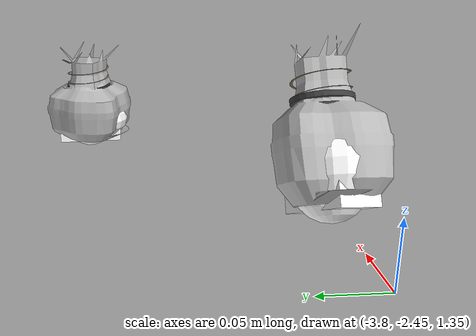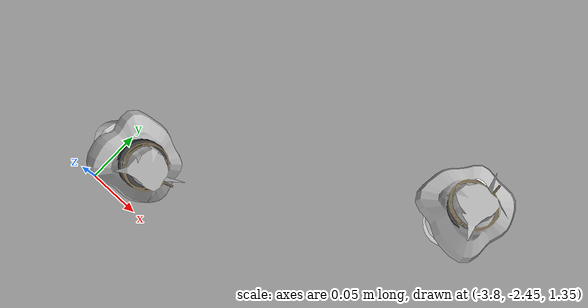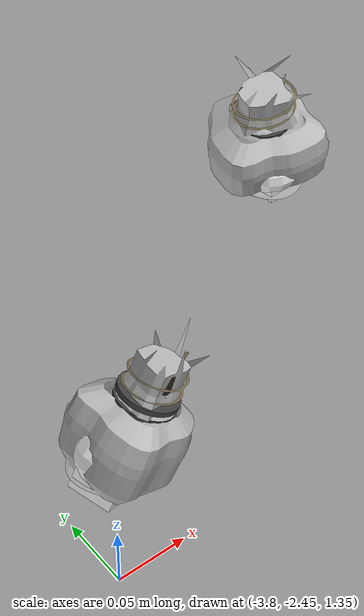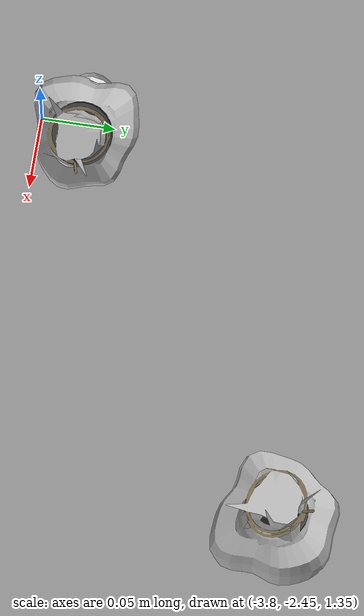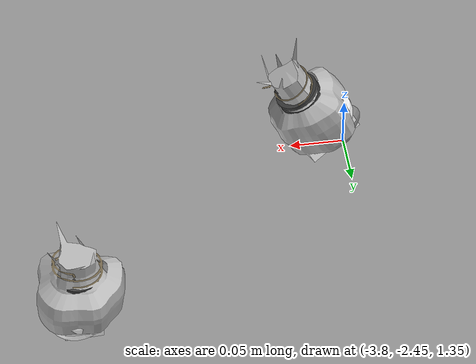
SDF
<sdf version="1.11">
 <world name="peach_orchard">
  <model name="ground">
   <static>true</static>
   <link name="link">
    <visual name="soil">
     <geometry><plane><normal>0 0 1</normal><size>32 22</size></plane></geometry>
     <material>
      <ambient>1 1 1 1</ambient>
      <diffuse>1 1 1 1</diffuse>
      <specular>0.1 0.1 0.1 1</specular>
      <pbr>
       <metal>
        <albedo_map>textures/soil_albedo.png</albedo_map>
        <normal_map type="tangent">textures/soil_normal.png</normal_map>
        <roughness>0.95</roughness>
        <metalness>0</metalness>
       </metal>
      </pbr>
     </material>
    </visual>
    <collision name="c_soil">
     <geometry><plane><normal>0 0 1</normal><size>32 22</size></plane></geometry>
    </collision>
   </link>
  </model>
  <model name="peach_tree_r1_t2_00">
   <pose>-3.52716 -2.25029 1.36869 0 0.0028242 1.2757</pose>
   <static>true</static>
   <link name="bag">
    <visual name="bag_mesh">
     <pose>0 0 0.0384279 0 0 0</pose>
     <geometry>
      <mesh><uri>model://peach_sim/meshes/bagged_peach.glb</uri><scale>0.984381 1.15967 0.873361</scale></mesh>
     </geometry>
    </visual>
    <visual name="body">
     <pose>0 0 0.0204279 0 0 0</pose>
     <geometry><ellipsoid><radii>0.0369143 0.0301515 0.0220621</radii></ellipsoid></geometry>
     <material>
      <ambient>1 1 1 1</ambient>
      <diffuse>1 1 1 1</diffuse>
      <specular>0.1 0.1 0.1 1</specular>
      <pbr>
       <metal>
        <albedo_map>textures/paper_bag_albedo.png</albedo_map>
        <normal_map type="tangent">textures/paper_bag_normal.png</normal_map>
        <roughness>0.72</roughness>
        <metalness>0</metalness>
       </metal>
      </pbr>
     </material>
    </visual>
    <visual name="bottom_fold">
     <pose>0 0 0.012 0 0 0.35</pose>
     <geometry><box><size>0.0572172 0.0346742 0.022</size></box></geometry>
     <material>
      <ambient>1 1 1 1</ambient>
      <diffuse>1 1 1 1</diffuse>
      <specular>0.1 0.1 0.1 1</specular>
      <pbr>
       <metal>
        <albedo_map>textures/paper_bag_albedo.png</albedo_map>
        <normal_map type="tangent">textures/paper_bag_normal.png</normal_map>
        <roughness>0.8</roughness>
        <metalness>0</metalness>
       </metal>
      </pbr>
     </material>
    </visual>
    <visual name="fruit">
     <pose>0 0 0.0179521 0 0 0</pose>
     <geometry><sphere><radius>0.0249102</radius></sphere></geometry>
     <material>
      <ambient>1 1 1 1</ambient>
      <diffuse>1 1 1 1</diffuse>
      <specular>0.1 0.1 0.1 1</specular>
      <pbr>
       <metal>
        <albedo_map>textures/fruit_skin_albedo.png</albedo_map>
        <normal_map type="tangent">textures/fruit_skin_normal.png</normal_map>
        <roughness>0.55</roughness>
        <metalness>0</metalness>
       </metal>
      </pbr>
     </material>
    </visual>
    <visual name="neck">
     <pose>0 0 0.0498557 0 0 0</pose>
     <geometry><cylinder><radius>0.013</radius><length>0.018</length></cylinder></geometry>
     <material>
      <ambient>1 1 1 1</ambient>
      <diffuse>1 1 1 1</diffuse>
      <specular>0.1 0.1 0.1 1</specular>
      <pbr>
       <metal>
        <albedo_map>textures/paper_bag_albedo.png</albedo_map>
        <normal_map type="tangent">textures/paper_bag_normal.png</normal_map>
        <roughness>0.75</roughness>
        <metalness>0</metalness>
       </metal>
      </pbr>
     </material>
    </visual>
    <visual name="gather">
     <pose>0 0 0.0308557 0 0 0</pose>
     <geometry><cylinder><radius>0.019</radius><length>0.02</length></cylinder></geometry>
     <material>
      <ambient>1 1 1 1</ambient>
      <diffuse>1 1 1 1</diffuse>
      <specular>0.1 0.1 0.1 1</specular>
      <pbr>
       <metal>
        <albedo_map>textures/paper_bag_albedo.png</albedo_map>
        <normal_map type="tangent">textures/paper_bag_normal.png</normal_map>
        <roughness>0.8</roughness>
        <metalness>0</metalness>
       </metal>
      </pbr>
     </material>
    </visual>
    <visual name="inner_paper">
     <pose>0 0 0.0548557 0 0 0</pose>
     <geometry><cylinder><radius>0.01</radius><length>0.008</length></cylinder></geometry>
     <material>
      <ambient>0.180392 0.14902 0.133333 1</ambient>
      <diffuse>0.180392 0.14902 0.133333 1</diffuse>
      <specular>0.1 0.1 0.1 1</specular>
     </material>
    </visual>
    <visual name="wire_0">
     <pose>0 0 0.0448557 0 0 0</pose>
     <geometry><cylinder><radius>0.0205</radius><length>0.0035</length></cylinder></geometry>
     <material>
      <ambient>0.25 0.25 0.25 1</ambient>
      <diffuse>0.25 0.25 0.25 1</diffuse>
      <specular>0.1 0.1 0.1 1</specular>
     </material>
    </visual>
    <visual name="wire_1">
     <pose>0 0 0.0518557 0 0 0</pose>
     <geometry><cylinder><radius>0.0205</radius><length>0.0035</length></cylinder></geometry>
     <material>
      <ambient>0.25 0.25 0.25 1</ambient>
      <diffuse>0.25 0.25 0.25 1</diffuse>
      <specular>0.1 0.1 0.1 1</specular>
     </material>
    </visual>
    <visual name="wire_tail">
     <pose>0.01 0 0.0528557 0 0.521618 0</pose>
     <geometry><cylinder><radius>0.0012</radius><length>0.026</length></cylinder></geometry>
     <material>
      <ambient>0.25 0.25 0.25 1</ambient>
      <diffuse>0.25 0.25 0.25 1</diffuse>
      <specular>0.1 0.1 0.1 1</specular>
     </material>
    </visual>
    <collision name="c_body">
     <pose>0 0 0.0204279 0 0 0</pose>
     <geometry><cylinder><radius>0.0369143</radius><length>0.0408557</length></cylinder></geometry>
    </collision>
   </link>
  </model>
  <model name="peach_tree_r1_t2_05">
   <pose>-3.78 -2.41356 1.39592 0 0.480333 0.0242756</pose>
   <static>true</static>
   <link name="bag">
    <visual name="bag_mesh">
     <pose>0 0 0.047754 0 0 0</pose>
     <geometry>
      <mesh><uri>model://peach_sim/meshes/bagged_peach.glb</uri><scale>0.934975 1.00985 1.08532</scale></mesh>
     </geometry>
    </visual>
    <visual name="body">
     <pose>0 0 0.029754 0 0 0</pose>
     <geometry><ellipsoid><radii>0.0350616 0.026256 0.0321344</radii></ellipsoid></geometry>
     <material>
      <ambient>1 1 1 1</ambient>
      <diffuse>1 1 1 1</diffuse>
      <specular>0.1 0.1 0.1 1</specular>
      <pbr>
       <metal>
        <albedo_map>textures/paper_bag_albedo.png</albedo_map>
        <normal_map type="tangent">textures/paper_bag_normal.png</normal_map>
        <roughness>0.72</roughness>
        <metalness>0</metalness>
       </metal>
      </pbr>
     </material>
    </visual>
    <visual name="bottom_fold">
     <pose>0 0 0.012 0 0 0.35</pose>
     <geometry><box><size>0.0543454 0.0301944 0.022</size></box></geometry>
     <material>
      <ambient>1 1 1 1</ambient>
      <diffuse>1 1 1 1</diffuse>
      <specular>0.1 0.1 0.1 1</specular>
      <pbr>
       <metal>
        <albedo_map>textures/paper_bag_albedo.png</albedo_map>
        <normal_map type="tangent">textures/paper_bag_normal.png</normal_map>
        <roughness>0.8</roughness>
        <metalness>0</metalness>
       </metal>
      </pbr>
     </material>
    </visual>
    <visual name="fruit">
     <pose>0 0 0.0174292 0 0 0</pose>
     <geometry><sphere><radius>0.0243663</radius></sphere></geometry>
     <material>
      <ambient>1 1 1 1</ambient>
      <diffuse>1 1 1 1</diffuse>
      <specular>0.1 0.1 0.1 1</specular>
      <pbr>
       <metal>
        <albedo_map>textures/fruit_skin_albedo.png</albedo_map>
        <normal_map type="tangent">textures/fruit_skin_normal.png</normal_map>
        <roughness>0.55</roughness>
        <metalness>0</metalness>
       </metal>
      </pbr>
     </material>
    </visual>
    <visual name="neck">
     <pose>0 0 0.0685081 0 0 0</pose>
     <geometry><cylinder><radius>0.013</radius><length>0.018</length></cylinder></geometry>
     <material>
      <ambient>1 1 1 1</ambient>
      <diffuse>1 1 1 1</diffuse>
      <specular>0.1 0.1 0.1 1</specular>
      <pbr>
       <metal>
        <albedo_map>textures/paper_bag_albedo.png</albedo_map>
        <normal_map type="tangent">textures/paper_bag_normal.png</normal_map>
        <roughness>0.75</roughness>
        <metalness>0</metalness>
       </metal>
      </pbr>
     </material>
    </visual>
    <visual name="gather">
     <pose>0 0 0.0495081 0 0 0</pose>
     <geometry><cylinder><radius>0.019</radius><length>0.02</length></cylinder></geometry>
     <material>
      <ambient>1 1 1 1</ambient>
      <diffuse>1 1 1 1</diffuse>
      <specular>0.1 0.1 0.1 1</specular>
      <pbr>
       <metal>
        <albedo_map>textures/paper_bag_albedo.png</albedo_map>
        <normal_map type="tangent">textures/paper_bag_normal.png</normal_map>
        <roughness>0.8</roughness>
        <metalness>0</metalness>
       </metal>
      </pbr>
     </material>
    </visual>
    <visual name="inner_paper">
     <pose>0 0 0.0735081 0 0 0</pose>
     <geometry><cylinder><radius>0.01</radius><length>0.008</length></cylinder></geometry>
     <material>
      <ambient>0.180392 0.14902 0.133333 1</ambient>
      <diffuse>0.180392 0.14902 0.133333 1</diffuse>
      <specular>0.1 0.1 0.1 1</specular>
     </material>
    </visual>
    <visual name="wire_0">
     <pose>0 0 0.0635081 0 0 0</pose>
     <geometry><cylinder><radius>0.0205</radius><length>0.0035</length></cylinder></geometry>
     <material>
      <ambient>0.25 0.25 0.25 1</ambient>
      <diffuse>0.25 0.25 0.25 1</diffuse>
      <specular>0.1 0.1 0.1 1</specular>
     </material>
    </visual>
    <visual name="wire_1">
     <pose>0 0 0.0705081 0 0 0</pose>
     <geometry><cylinder><radius>0.0205</radius><length>0.0035</length></cylinder></geometry>
     <material>
      <ambient>0.25 0.25 0.25 1</ambient>
      <diffuse>0.25 0.25 0.25 1</diffuse>
      <specular>0.1 0.1 0.1 1</specular>
     </material>
    </visual>
    <visual name="wire_tail">
     <pose>0.01 0 0.0715081 0 0.521618 0</pose>
     <geometry><cylinder><radius>0.0012</radius><length>0.026</length></cylinder></geometry>
     <material>
      <ambient>0.25 0.25 0.25 1</ambient>
      <diffuse>0.25 0.25 0.25 1</diffuse>
      <specular>0.1 0.1 0.1 1</specular>
     </material>
    </visual>
    <collision name="c_body">
     <pose>0 0 0.029754 0 0 0</pose>
     <geometry><cylinder><radius>0.0350616</radius><length>0.0595081</length></cylinder></geometry>
    </collision>
   </link>
  </model>
 </world>
</sdf>
